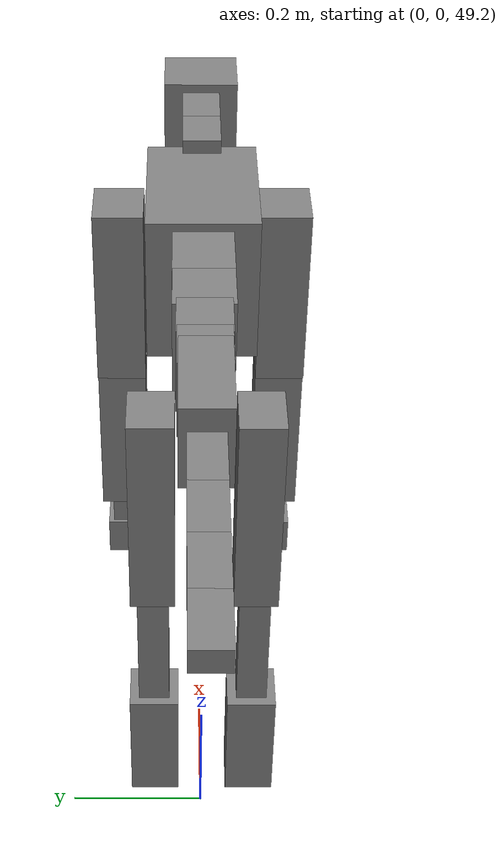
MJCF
<mujoco model="dog">

    <default>
        <joint armature="0.02" stiffness="1" damping="0.2" limited="true"/>
        <geom condim="3" friction="1 0.05 0.05" margin="0.01"/>
        <motor ctrllimited="true" ctrlrange="-1.0 1.0" forcelimited="true" gear="50"/>
    </default>

    <compiler inertiafromgeom="true" angle="radian"/>

    <option timestep="0.016" iterations="50" tolerance="1e-10" solver="Newton" jacobian="dense" cone="pyramidal"/>

    <size nconmax="20000" njmax="60000" nstack="5000000"/>
    <visual>
        <map force="0.1" zfar="30"/>
        <rgba haze="0.15 0.25 0.35 1"/>
        <quality shadowsize="2048"/>
        <global offwidth="800" offheight="800"/>
    </visual>

    <asset>
        <texture type="skybox" builtin="gradient" rgb1="0.3 0.5 0.7" rgb2="0 0 0" width="512" height="512"/>
        <texture name="texplane" type="2d" builtin="checker" rgb1=".2 .3 .4" rgb2=".1 0.15 0.2" width="512" height="512"
                 mark="cross" markrgb=".8 .8 .8"/>
        <texture name="texgeom" type="cube" builtin="flat" mark="cross" width="127" height="1278" rgb1="0.8 0.6 0.4"
                 rgb2="0.8 0.6 0.4" markrgb="1 1 1" random="0.01"/>

        <material name="matplane" reflectance="0.3" texture="texplane" texrepeat="1 1" texuniform="true"/>
        <material name="matgeom" texture="texgeom" texuniform="true" rgba="0.8 0.6 .4 1"/>
    </asset>

    <worldbody>
        <geom name="floor" pos="0 0 0" size="0 0 .25" type="plane" material="matplane" condim="3"/>

        <light directional="false" diffuse=".2 .2 .2" specular="0 0 0" pos="0 0 5" dir="0 0 -1" castshadow="false"/>
        <light mode="targetbodycom" target="torso" directional="false" diffuse=".8 .8 .8" specular="0.3 0.3 0.3"
               pos="0 0 4.0" dir="0 0 -1"/>

        <body name="root" pos="0 0 50">
            <freejoint name="root_1"/>
            <geom type="box" pos="0 0 -0.02" size="0.0774  0.0358  0.063" density="2030"/>

            <body name="spine1" pos="0.054 0 0">
                <joint name="spine1_y" axis="0 1 0" range="0 0.7" limited="true"/>
                <geom type="box" pos="0.02375 0 -0.03" size="0.04375  0.0375  0.05985" density="2030"/>

                <body name="spine2" pos="0.0612 0 0">
                    <joint name="spine2_y" axis="0 1 0" range="-0.15 0.15" limited="true"/>
                    <geom type="box" pos="0.03555  0  -0.04" size="0.04055  0.039  0.06615" density="2030"/>

                    <body name="spine3" pos="0.0730 0 0">
                        <joint name="spine3_y" axis="0 1 0" range="-0.15 0.15" limited="true"/>
                        <geom type="box" pos="0.03555  0  -0.057" size="0.04555  0.0445  0.081" density="2030"/>

                        <body name="spine4" pos="0.0780 0 0">
                            <joint name="spine4_y" axis="0 1 0" range="-0.15 0.15" limited="true"/>
                            <geom type="box" pos="0.05265  0  -0.07" size="0.05265  0.045  0.09135" density="2030"/>

                            <body name="torso" pos="0.1082 0 0">
                                <joint name="torso_y" axis="0 1 0" range="-0.15 0.15" limited="true"/>
                                <geom type="box" pos="0.11925  0  -0.085" size="0.11925  0.085  0.11745"
                                      density="2030"/>

                                <body name="neck1" pos="0.2160  0   0.0180">
                                    <joint name="neck1_y" axis="0 1 0" range="-1.2  -1" limited="true"/>
                                    <geom type="box" pos="0.0423  0  0" size="0.0423  0.03  0.036" density="2325"/>

                                    <body name="neck2" pos="0.0853  0  0">
                                        <joint name="neck2_y" axis="0 1 0" range="0.1  0" limited="true"/>
                                        <geom type="box" pos="0.0423  0  0" size="0.0423  0.03  0.036" density="2325"/>

                                        <body name="head" pos="0.0853  0  0">
                                            <joint name="head_y" axis="0 1 0" range="-0.3  -0.2" limited="true"/>
                                            <geom type="box" pos="0.0531  0  -0.055" size="0.0531  0.06  0.1044"
                                                  density="4030"/>

                                        </body>
                                    </body>
                                </body>

                                <body name="front_shoulder" pos="0.156  0   -0.0480">
                                    <joint name="front_shoulder_y" axis="0 1 0" range="-1 1.5" limited="true"/>
                                    <geom type="box" pos="0 0.13 -0.1254" size="0.0462  0.0395  0.1521" density="1158"/>
                                    <geom type="box" pos="0 -0.13 -0.1254" size="0.0462  0.0395  0.1521"
                                          density="1158"/>

                                    <body name="front_elbow" pos="0  0  -0.2508">
                                        <joint name="front_elbow_y" axis="0 1 0" range="-2 0" limited="true"/>
                                        <geom type="box" pos="0 0.13 -0.1517" size="0.0383  0.0391  0.1517"
                                              density="1081"/>
                                        <geom type="box" pos="0 -0.13 -0.1517" size="0.0383  0.0391  0.1517"
                                              density="1081"/>

                                        <body name="front_wrist" pos="0  0  -0.3034">
                                            <joint name="front_wrist_y" axis="0 1 0" range="-0.2 0" limited="true"/>
                                            <geom type="box" pos="0 0.13 -0.0376" size="0.0199  0.0221  0.0507"
                                                  density="1664"/>
                                            <geom type="box" pos="0 -0.13 -0.0376" size="0.0199  0.0221  0.0507"
                                                  density="1664"/>

                                            <body name="front_finger_end" pos="0  0  -0.0751">
                                                <joint name="front_finger_y" axis="0 1 0" range="-0.4 1"
                                                       limited="true"/>
                                                <geom type="box" pos="0.0311  0.13  -0.0190"
                                                      size="0.0570  0.0311  0.0340" density="1515"/>
                                                <geom type="box" pos="0.0311  -0.13  -0.0190"
                                                      size="0.0570  0.0311  0.0340" density="1515"/>

                                            </body>

                                        </body>
                                    </body>
                                </body>

                            </body>
                        </body>
                    </body>
                </body>
            </body>

            <body name="back_hip" pos="-0.03 0 -0.018">
                <joint name="back_hip_y" axis="0 1 0" range="-1.5 0.3" limited="true"/>
                <geom type="box" pos="0 0.07 -0.1303" size="0.0386  0.0303  0.1531" density="1154"/>
                <geom type="box" pos="0 -0.07 -0.1303" size="0.0386  0.0303  0.1531" density="1154"/>

                <body name="back_knee" pos="0  0  -0.2606">
                    <joint name="back_knee_y" axis="0 1 0" range="0 2.8" limited="true"/>
                    <geom type="box" pos="0 0.07 -0.1177" size="0.0220  0.0217  0.1332" density="1227"/>
                    <geom type="box" pos="0 -0.07 -0.1177" size="0.0220  0.0217  0.1332" density="1227"/>

                    <body name="back_ankle" pos="0  0  -0.2354">
                        <joint name="back_ankle_y" axis="0 1 0" range="-2.2 0" limited="true"/>
                        <geom type="box" pos="0 0.07 -0.0816" size="0.0348  0.0348  0.0929" density="1284"/>
                        <geom type="box" pos="0 -0.07 -0.0816" size="0.0348  0.0348  0.0929" density="1284"/>

                        <body name="back_toe_end" pos="0  0  -0.1633">
                            <joint name="back_toe_y" axis="0 1 0" range="-0.4 1" limited="true"/>
                            <geom type="box" pos="0.0260  0.07  -0.0043" size="0.0476  0.0260  0.0193" density="1515"/>
                            <geom type="box" pos="0.0260  -0.07  -0.0043" size="0.0476  0.0260  0.0193" density="1515"/>

                        </body>
                    </body>
                </body>
            </body>

            <body name="tail1" pos="-0.074 0 -0.006">
                <joint name="tail1_y" axis="0 1 0" range="-0.2 0.2" limited="true"/>
                <geom type="box" pos="-0.0536  0  0" size="0.045  0.025  0.0175" density="1587"/>

                <body name="tail2" pos="-0.09 0 0">
                    <joint name="tail2_y" axis="0 1 0" range="-0.2 0.2" limited="true"/>
                    <geom type="box" pos="-0.0536  0  0" size="0.045  0.025  0.0175" density="1587"/>

                    <body name="tail3" pos="-0.09 0 0">
                        <joint name="tail3_y" axis="0 1 0" range="-0.2 0.2" limited="true"/>
                        <geom type="box" pos="-0.0536  0  0" size="0.045  0.025  0.0175" density="1587"/>

                        <body name="tail4" pos="-0.09 0 0">
                            <joint name="tail4_y" axis="0 1 0" range="-0.2 0.2" limited="true"/>
                            <geom type="box" pos="-0.0536  0  0" size="0.045  0.025  0.0175" density="1587"/>

                        </body>
                    </body>
                </body>
            </body>
        </body>
    </worldbody>

    <actuator>
        <motor joint="spine1_y" forcerange="-150 150     "/>
        <motor joint="spine2_y" forcerange="-150 150     "/>
        <motor joint="spine3_y" forcerange="-150 150     "/>
        <motor joint="spine4_y" forcerange="-150 150     "/>
        <motor joint="torso_y" forcerange="-150 150     "/>
        <motor joint="neck1_y" forcerange="-100 100       "/>
        <motor joint="neck2_y" forcerange="-100 100       "/>
        <motor joint="head_y" forcerange="-150 150       "/>
        <motor joint="front_shoulder_y" forcerange="-166.52 196.65"/>
        <motor joint="front_elbow_y" forcerange="-191.24 193.26"/>
        <motor joint="front_wrist_y" forcerange="-108.86 68.16"/>
        <motor joint="front_finger_y" forcerange="-35.44 90.46"/>
        <motor joint="back_hip_y" forcerange="-337.96 266.22"/>
        <motor joint="back_knee_y" forcerange="-313.36 202.32"/>
        <motor joint="back_angle_y" forcerange="-213.41 243.39"/>
        <motor joint="back_toe_y" forcerange="-79.95 47.72"/>
        <motor joint="tail1_y" forcerange="-50 50     "/>
        <motor joint="tail2_y" forcerange="-50 50     "/>
        <motor joint="tail3_y" forcerange="-50 50     "/>
        <motor joint="tail4_y" forcerange="-50 50     "/>
    </actuator>
</mujoco>
